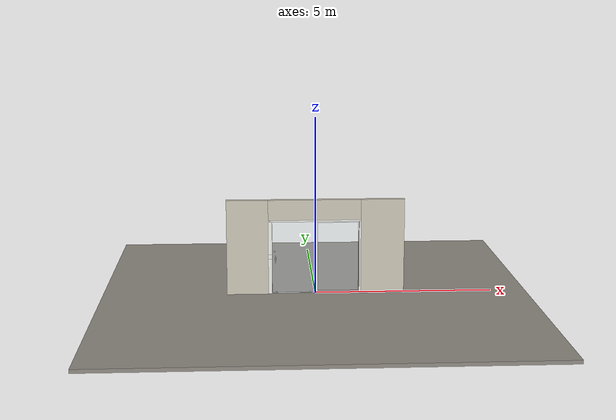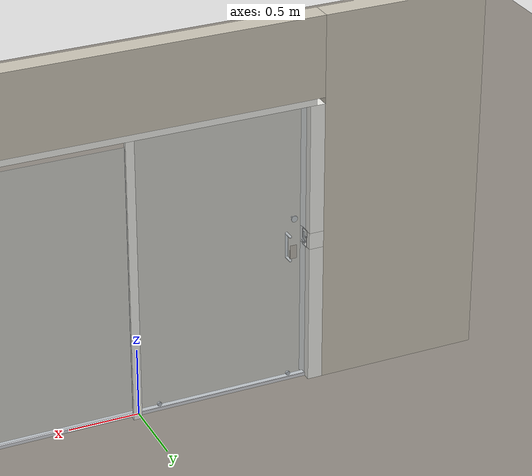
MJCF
<?xml version="1.0" ?>
<mujoco model="db0903_sliding_single_simple">
  <compiler angle="radian" meshdir="../../hardware" texturedir="../../textures" autolimits="true" inertiafromgeom="false"/>
  <option timestep="0.002" integrator="implicitfast" cone="elliptic" impratio="10" noslip_iterations="3">
    <flag multiccd="enable"/>
  </option>
  <size memory="16M"/>
  <default>
    <geom condim="4" solref="0.005 1" solimp="0.95 0.99 0.001"/>
    <joint solreflimit="0.005 1" solimplimit="0.95 0.99 0.001"/>
    <tendon solreflimit="0.005 1"/>
    <equality solref="0.002 1"/>
  </default>
  <visual>
    <headlight ambient="0.4 0.4 0.4" diffuse="0.7 0.7 0.7" specular="0.2 0.2 0.2"/>
    <quality shadowsize="4096"/>
    <map znear="0.01" zfar="60"/>
  </visual>
  <asset>
    <mesh name="pull_1e5d69a91a" file="pull_1e5d69a91a.obj"/>
    <mesh name="thumbturn_eb5c9899a3" file="thumbturn_eb5c9899a3.obj"/>
    <material name="mat_floor" rgba="0.55 0.53 0.5 1" specular="0.2" shininess="0.15" reflectance="0"/>
    <material name="mat_wall" rgba="0.78 0.76 0.7 1" specular="0.2" shininess="0.1" reflectance="0"/>
    <material name="mat_frame" rgba="0.92 0.92 0.9 1" specular="0.2" shininess="0.6" reflectance="0"/>
    <material name="mat_track" rgba="0.8 0.81 0.83 1" specular="0.8" shininess="0.6" reflectance="0.4"/>
    <material name="mat_fixed_glass" rgba="0.85 0.92 0.95 0.25" specular="0.2" shininess="0.95" reflectance="0.1"/>
    <material name="mat_leaf" rgba="0.85 0.92 0.95 0.25" specular="0.2" shininess="0.95" reflectance="0.1"/>
    <material name="mat_glass_leaf" rgba="0.85 0.92 0.95 0.25" specular="0.2" shininess="0.95" reflectance="0.1"/>
    <material name="mat_patch" rgba="0.75 0.76 0.77 1" specular="0.8" shininess="0.65" reflectance="0.4"/>
    <material name="mat_roller" rgba="0.65 0.66 0.68 1" specular="0.74" shininess="0.5" reflectance="0.36"/>
    <material name="mat_op_stainless" rgba="0.75 0.76 0.77 1" specular="0.8" shininess="0.65" reflectance="0.4"/>
    <material name="mat_op_nickel_satin" rgba="0.72 0.7 0.66 1" specular="0.8" shininess="0.65" reflectance="0.4"/>
    <material name="mat_hook" rgba="0.75 0.76 0.77 1" specular="0.8" shininess="0.65" reflectance="0.4"/>
    <texture name="skybox" type="skybox" builtin="gradient" rgb1="0.6 0.7 0.85" rgb2="0.9 0.92 0.95" width="256" height="256"/>
  </asset>
  <worldbody>
    <light name="sun" pos="1.5 -2.5 4" dir="-0.3 0.5 -0.8" directional="true" diffuse="0.8 0.8 0.8" specular="0.3 0.3 0.3" castshadow="true"/>
    <light name="fill" pos="-1.5 2.5 3" dir="0.3 -0.5 -0.7" directional="true" diffuse="0.35 0.35 0.4" castshadow="false"/>
    <camera name="robot_view" pos="0 -2.929375 1.858725" xyaxes="1 0 0 0 0.26963 0.962964" fovy="52"/>
    <camera name="far_view" pos="0 2.929375 1.858725" xyaxes="-1 0 0 0 -0.26963 0.962964" fovy="52"/>
    <camera name="iso" pos="2.226325 -2.460675 2.327425" xyaxes="0.741536 0.670913 0 -0.242917 0.268487 0.932151" fovy="46"/>
    <camera name="detail_handle" pos="-0.954 -0.8825 1.28" xyaxes="0.97561 0.219512 0 -0.070934 0.315262 0.94635" fovy="38"/>
    <geom name="floor" type="box" size="6 6 0.05" pos="0 0 -0.05" material="mat_floor" group="0" contype="1" conaffinity="1" friction="0.8 0.005 0.0001" density="2400"/>
    <geom name="wall_left" type="box" size="0.583 0.0725 1.35" pos="-1.917 0 1.35" material="mat_wall" group="0" contype="1" conaffinity="1" friction="0.6 0.005 0.0001" density="800"/>
    <geom name="wall_right" type="box" size="0.613 0.0725 1.35" pos="1.887 0 1.35" material="mat_wall" group="0" contype="1" conaffinity="1" friction="0.6 0.005 0.0001" density="800"/>
    <geom name="wall_header" type="box" size="1.304 0.0725 0.289" pos="-0.03 0 2.411" material="mat_wall" group="0" contype="1" conaffinity="1" friction="0.6 0.005 0.0001" density="800"/>
    <geom name="jamb_r" type="box" size="0.0225 0.0725 1.0385" pos="1.2515 0 1.0385" material="mat_frame" group="0" contype="1" conaffinity="1" friction="0.6 0.005 0.0001" density="300"/>
    <geom name="jamb_head" type="box" size="1.274 0.0725 0.0225" pos="0 0 2.0995" material="mat_frame" group="0" contype="1" conaffinity="1" friction="0.6 0.005 0.0001" density="300"/>
    <geom name="fixed_panel_glass" type="box" size="0.5945 0.003 0.9885" pos="0.6145 0.04 1.0385" material="mat_fixed_glass" group="0" contype="1" conaffinity="1" friction="0.6 0.005 0.0001" density="2500"/>
    <geom name="fixed_panel_stile" type="box" size="0.03 0.012 1.0385" pos="0.03 0.0475 1.0385" material="mat_frame" group="0" contype="1" conaffinity="1" friction="0.6 0.005 0.0001" density="1400"/>
    <geom name="bottom_rail" type="box" size="1.22 0.02 0.012" pos="-0.054 0 0.012" material="mat_track" group="0" contype="1" conaffinity="1" friction="0.6 0.005 0.0001" density="2700"/>
    <geom name="leaf_hook_keeper" type="box" size="0.008 0.015 0.006" pos="-1.242 0 1.08" material="mat_hook" group="0" contype="1" conaffinity="1" friction="0.6 0.005 0.0001" density="7900"/>
    <geom name="jamb_latch_pwall_1080_n" type="box" size="0.0525 0.022 0.06" pos="-1.2815 -0.0505 1.08" material="mat_frame" group="0" contype="1" conaffinity="1" friction="0.6 0.005 0.0001" density="300"/>
    <geom name="jamb_latch_pwall_1080_p" type="box" size="0.0525 0.022 0.06" pos="-1.2815 0.0505 1.08" material="mat_frame" group="0" contype="1" conaffinity="1" friction="0.6 0.005 0.0001" density="300"/>
    <geom name="jamb_latch_pback_1080" type="box" size="0.004 0.0285 0.06" pos="-1.33 0 1.08" material="mat_frame" group="0" contype="1" conaffinity="1" friction="0.6 0.005 0.0001" density="300"/>
    <geom name="jamb_latch_0" type="box" size="0.0525 0.0725 0.51" pos="-1.2815 0 0.51" material="mat_frame" group="0" contype="1" conaffinity="1" friction="0.6 0.005 0.0001" density="300"/>
    <geom name="jamb_latch_1" type="box" size="0.0525 0.0725 0.4685" pos="-1.2815 0 1.6085" material="mat_frame" group="0" contype="1" conaffinity="1" friction="0.6 0.005 0.0001" density="300"/>
    <geom name="leaf_hook_keeper_plate_b" type="box" size="0.0345 0.003 0.0005" pos="-1.2285 0 1.017" quat="0.5 0.5 0.5 0.5" material="mat_hook" group="1" contype="0" conaffinity="0" density="7800"/>
    <geom name="leaf_hook_keeper_plate_l" type="box" size="0.003 0.06 0.0005" pos="-1.2285 -0.0315 1.08" quat="0.5 0.5 0.5 0.5" material="mat_hook" group="1" contype="0" conaffinity="0" density="7800"/>
    <geom name="leaf_hook_keeper_plate_t" type="box" size="0.0345 0.003 0.0005" pos="-1.2285 0 1.143" quat="0.5 0.5 0.5 0.5" material="mat_hook" group="1" contype="0" conaffinity="0" density="7800"/>
    <geom name="leaf_hook_keeper_plate_r" type="box" size="0.003 0.06 0.0005" pos="-1.2285 0.0315 1.08" quat="0.5 0.5 0.5 0.5" material="mat_hook" group="1" contype="0" conaffinity="0" density="7800"/>
    <geom name="leaf_hook_keeper_bracket" type="box" size="0.0064 0.00725 0.005" pos="-1.242 0.02175 1.08" material="mat_hook" group="1" contype="0" conaffinity="0" density="7850"/>
    <site name="approach_point" pos="0 -1.5 0" quat="1 0 0 0" size="0.05" rgba="0.2 0.9 0.2 0.5" group="4"/>
    <site name="goal_point" pos="0 1.5 0" quat="1 0 0 0" size="0.05" rgba="0.2 0.9 0.2 0.5" group="4"/>
    <site name="door_plane_center" pos="0 0 1.0385" quat="1 0 0 0" size="0.02" rgba="0.2 0.9 0.2 0.5" group="4"/>
    <body name="leaf" pos="-0.6145 0 0">
      <inertial pos="-0.002587 -0.000337 1.043942" mass="173.721589" quat="0.49981 0.500488 -0.49949 0.500211" diaginertia="21.706011403 59.733386773 81.372052589"/>
      <joint name="leaf_slide" type="slide" axis="1 0 0" limited="true" range="0 1.121" damping="10.698629" frictionloss="266.149765" armature="0.5"/>
      <geom name="leaf_glass" type="box" size="0.6095 0.0225 1.016" pos="0 0 1.046" material="mat_glass_leaf" group="0" contype="1" conaffinity="1" friction="0.4 0.005 0.0001" density="1"/>
      <geom name="leaf_roller_0" type="cylinder" size="0.015 0.008" pos="-0.4945 0 0.039" quat="0.707107 -0.707107 0 0" material="mat_roller" group="1" contype="0" conaffinity="0" density="7850"/>
      <geom name="leaf_roller_1" type="cylinder" size="0.015 0.008" pos="0.4645 0 0.039" quat="0.707107 -0.707107 0 0" material="mat_roller" group="1" contype="0" conaffinity="0" density="7850"/>
      <geom name="leaf_pull_n" type="mesh" mesh="pull_1e5d69a91a" pos="-0.5195 -0.0225 1" quat="0 0 -0.707107 0.707107" material="mat_op_stainless" group="1" contype="0" conaffinity="0" density="3000"/>
      <geom name="leaf_pull_col_n" type="capsule" size="0.0095 0.08" pos="-0.5195 -0.0825 1" material="mat_op_stainless" group="3" contype="1" conaffinity="1" rgba="0.8 0.3 0.3 0.25" friction="0.7 0.01 0.0001" density="3000"/>
      <geom name="leaf_ext_pull_p" type="box" size="0.025 0.0005 0.05" pos="-0.5195 0.023 1" material="mat_op_nickel_satin" group="1" contype="0" conaffinity="0" density="1000"/>
      <geom name="leaf_hook_faceplate" type="box" size="0.0006 0.011 0.045" pos="-0.6089 0 1.08" material="mat_hook" group="1" contype="0" conaffinity="0" density="7900"/>
      <site name="leaf_pull_grip_n" pos="-0.5195 -0.0825 1" quat="1 0 0 0" size="0.012" rgba="0.2 0.9 0.2 0.5" group="4"/>
      <site name="leaf_ext_pull_grip_p" pos="-0.5195 0.0225 1" quat="1 0 0 0" size="0.012" rgba="0.2 0.9 0.2 0.5" group="4"/>
      <site name="leaf_edge_mid" pos="-0.6095 0 1.046" quat="1 0 0 0" size="0.02" rgba="0.2 0.9 0.2 0.5" group="4"/>
      <body name="leaf_hook_thumbturn" pos="-0.5495 -0.0225 1.22">
        <inertial pos="0 -0.012928 0" mass="0.178946" quat="0.678504 0.199079 -0.199079 -0.678504" diaginertia="0.000026045 0.000026215 0.000032438"/>
        <joint name="leaf_hook_thumbturn_hinge" type="hinge" axis="0 1 0" limited="true" range="0 1" damping="0.05" frictionloss="0.25" armature="0.005" ref="1"/>
        <geom name="leaf_hook_tt_mesh" type="mesh" mesh="thumbturn_eb5c9899a3" pos="0 0 0" quat="0.339005 0.339005 -0.620545 0.620545" material="mat_hook" group="0" contype="1" conaffinity="1" friction="0.6 0.005 0.0001" density="7100"/>
        <geom name="leaf_hook_tt_col" type="box" size="0.006 0.012 0.016" pos="0 -0.02 0" quat="0.877583 0 0.479426 0" material="mat_hook" group="3" contype="1" conaffinity="1" rgba="0.8 0.3 0.3 0.25" friction="0.6 0.005 0.0001" density="7100"/>
        <site name="leaf_hook_tt_grip" pos="0 -0.03 0" quat="0.877583 0 0.479426 0" size="0.01" rgba="0.2 0.9 0.2 0.5" group="4"/>
      </body>
      <body name="leaf_hook" pos="-0.6095 0 1.08">
        <inertial pos="-0.006651 0 -0.027503" mass="0.072048" quat="0.148813 -0.148813 0.69127 0.69127" diaginertia="0.000005266 0.00001511 0.000019175"/>
        <joint name="leaf_hook_hinge" type="hinge" axis="0 -1 0" limited="true" range="0 1" damping="0.05" frictionloss="0.1" armature="0.005" ref="1"/>
        <geom name="leaf_hook_arm" type="box" size="0.022 0.005 0.006" pos="0.002657 0 -0.025474" quat="0.877583 0 -0.479426 0" material="mat_hook" group="0" contype="1" conaffinity="1" friction="0.6 0.005 0.0001" density="7900"/>
        <geom name="leaf_hook_tip" type="box" size="0.006 0.005 0.016" pos="-0.019451 0 -0.030293" quat="0.877583 0 -0.479426 0" material="mat_hook" group="0" contype="1" conaffinity="1" friction="0.6 0.005 0.0001" density="7900"/>
      </body>
    </body>
  </worldbody>
  <equality>
    <joint name="leaf_hook_couple" joint1="leaf_hook_hinge" joint2="leaf_hook_thumbturn_hinge" polycoef="0 1 0 0 0" active="true"/>
  </equality>
  <sensor>
    <jointpos name="leaf_slide_pos" joint="leaf_slide"/>
    <jointvel name="leaf_slide_vel" joint="leaf_slide"/>
    <jointpos name="leaf_hook_thumbturn_hinge_pos" joint="leaf_hook_thumbturn_hinge"/>
    <jointvel name="leaf_hook_thumbturn_hinge_vel" joint="leaf_hook_thumbturn_hinge"/>
    <jointpos name="leaf_hook_hinge_pos" joint="leaf_hook_hinge"/>
    <jointvel name="leaf_hook_hinge_vel" joint="leaf_hook_hinge"/>
  </sensor>
</mujoco>
